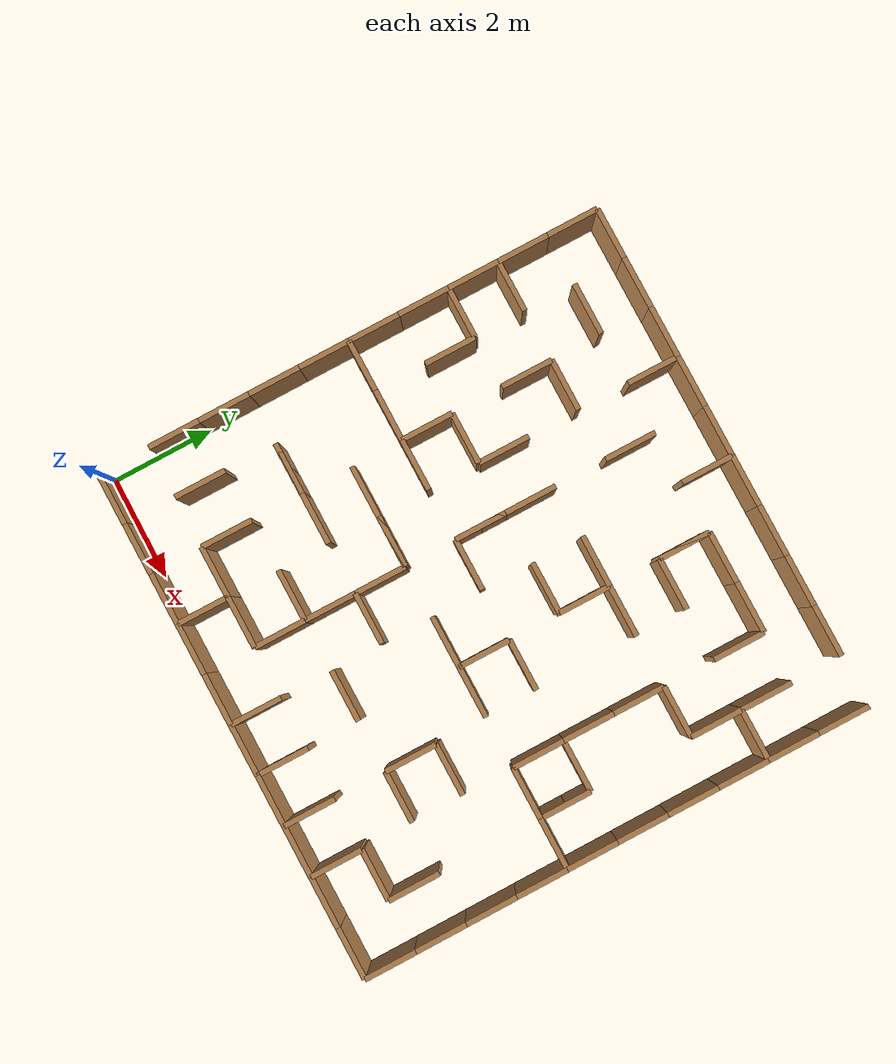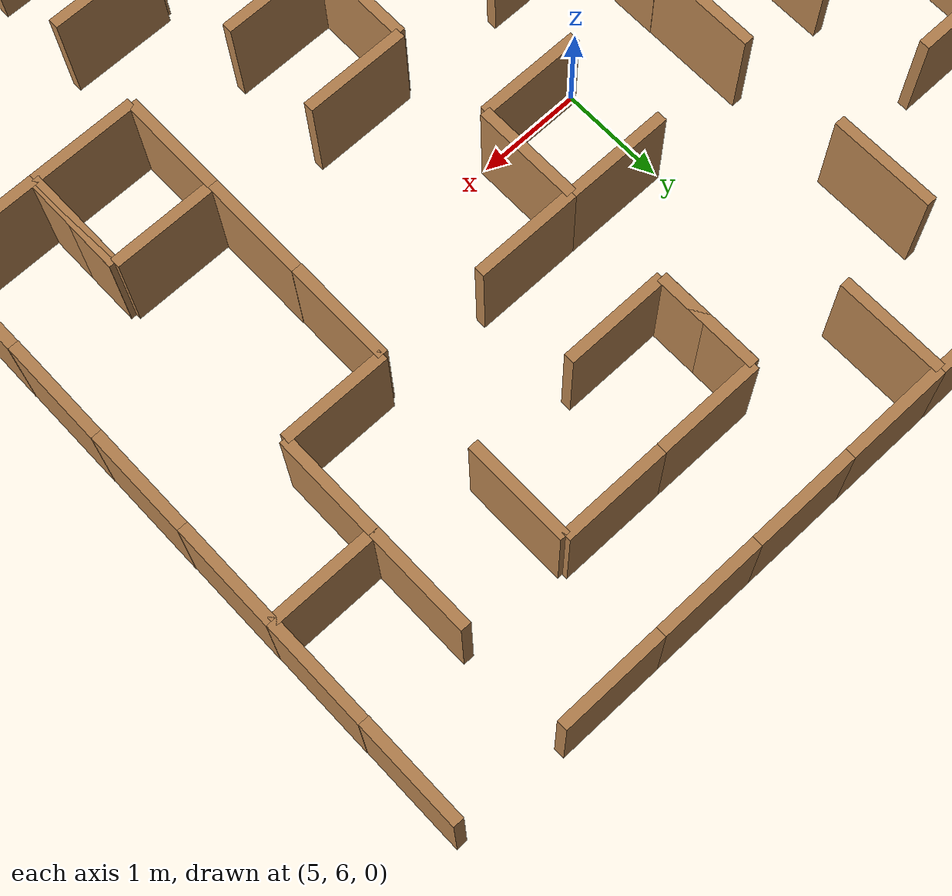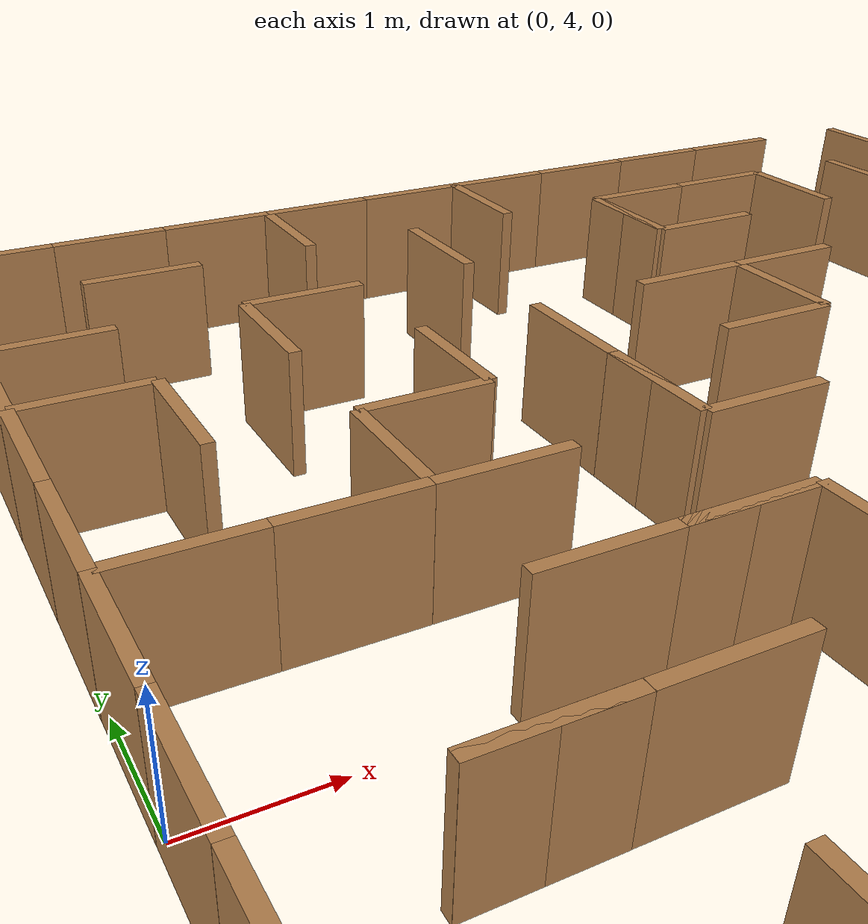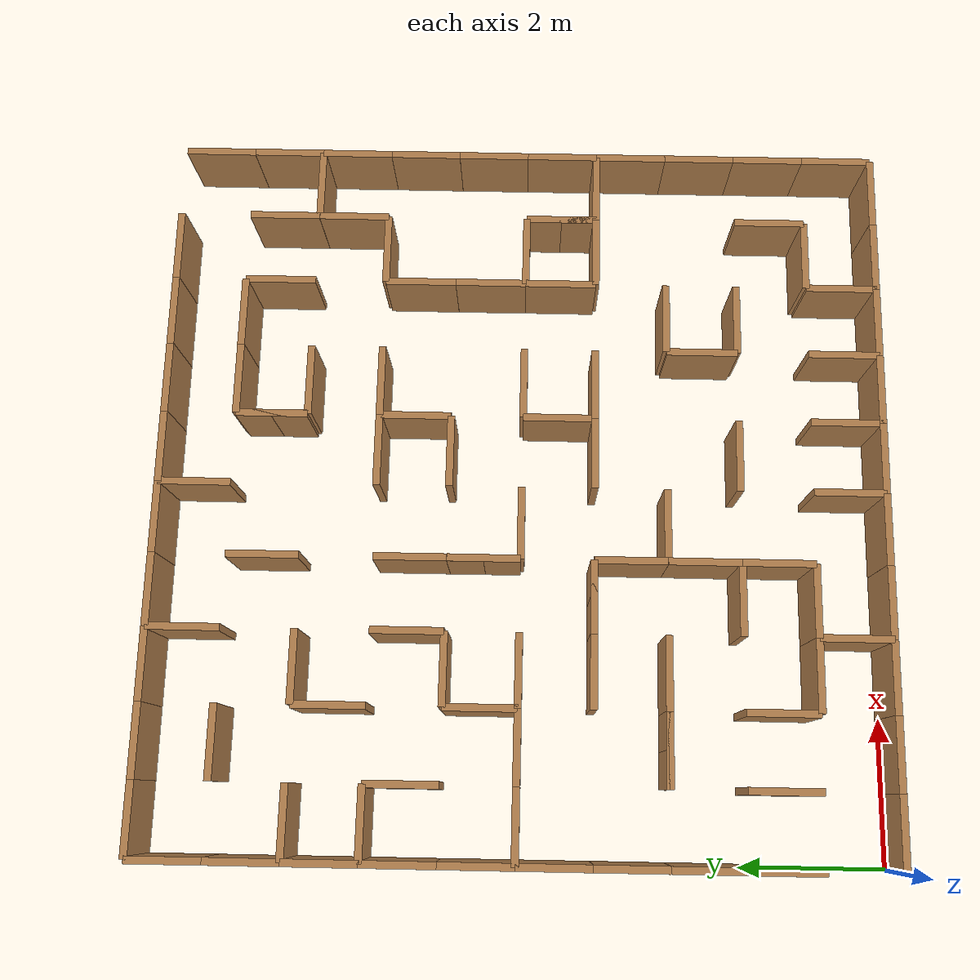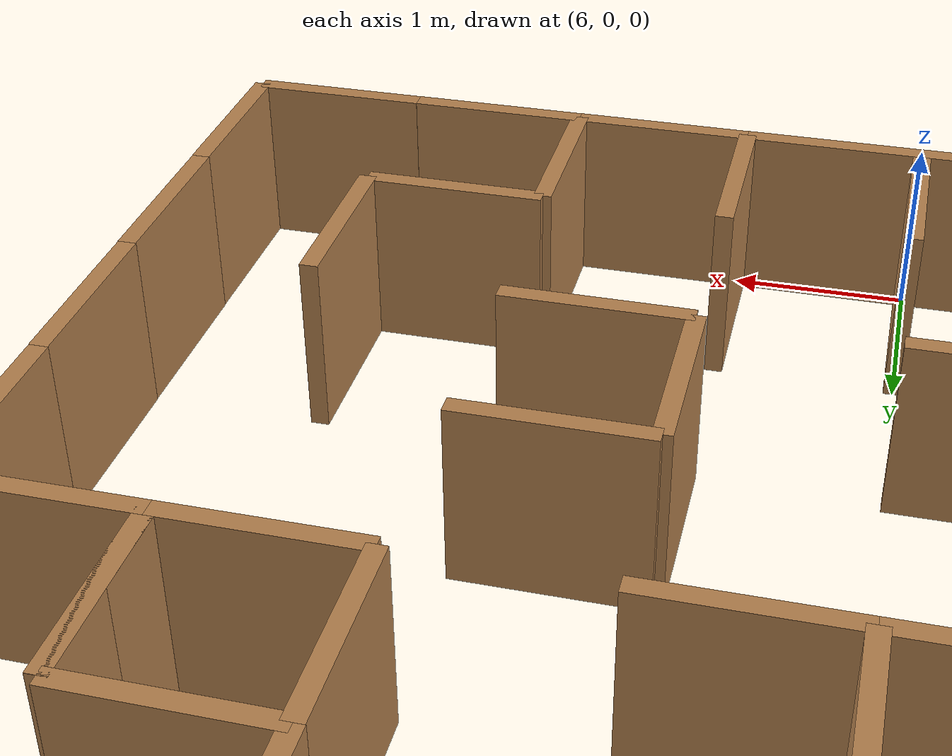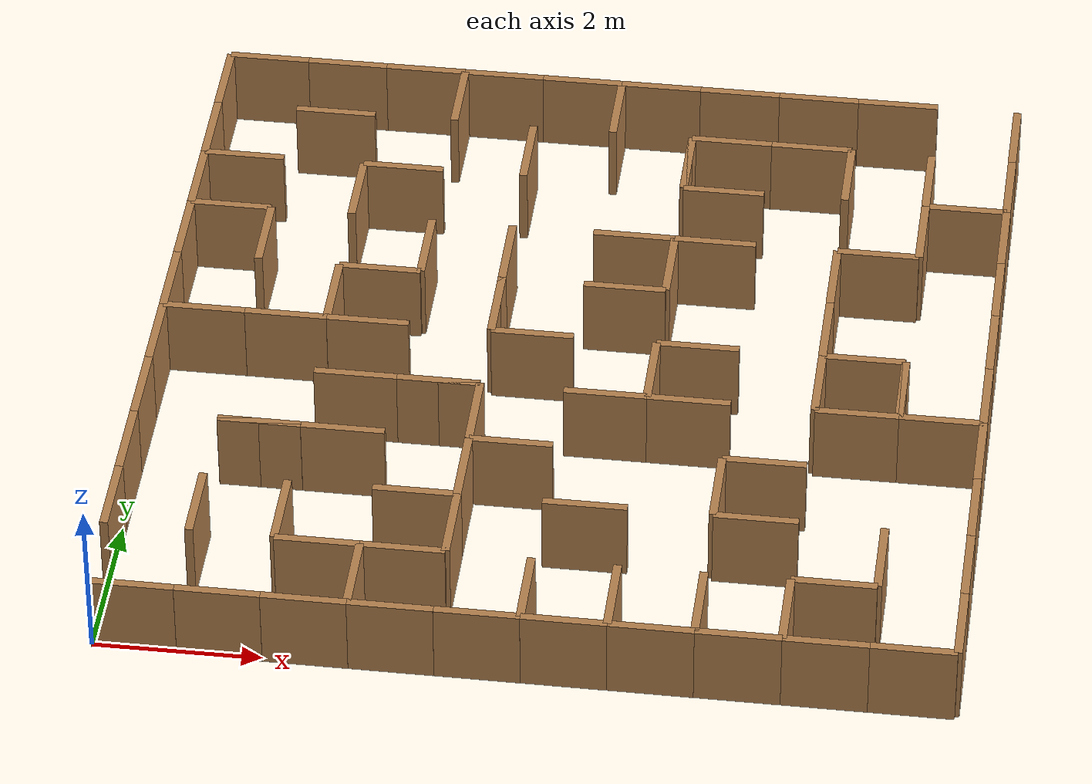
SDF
<?xml version='1.0'?>
<sdf version='1.6'>
<model name='slam_maze'>
<static>true</static>
<include>
<uri>../models/maze/slam_maze_wall</uri>
<pose>0.5 1.500000 0 0 0 1.570000</pose>
</include>
<include>
<uri>../models/maze/slam_maze_wall</uri>
<pose>0.5 2.500000 0 0 0 1.570000</pose>
</include>
<include>
<uri>../models/maze/slam_maze_wall</uri>
<pose>0.5 3.500000 0 0 0 1.570000</pose>
</include>
<include>
<uri>../models/maze/slam_maze_wall</uri>
<pose>0.5 4.500000 0 0 0 1.570000</pose>
</include>
<include>
<uri>../models/maze/slam_maze_wall</uri>
<pose>0.5 5.500000 0 0 0 1.570000</pose>
</include>
<include>
<uri>../models/maze/slam_maze_wall</uri>
<pose>0.5 6.500000 0 0 0 1.570000</pose>
</include>
<include>
<uri>../models/maze/slam_maze_wall</uri>
<pose>0.5 7.500000 0 0 0 1.570000</pose>
</include>
<include>
<uri>../models/maze/slam_maze_wall</uri>
<pose>0.5 8.500000 0 0 0 1.570000</pose>
</include>
<include>
<uri>../models/maze/slam_maze_wall</uri>
<pose>0.5 9.500000 0 0 0 1.570000</pose>
</include>
<include>
<uri>../models/maze/slam_maze_wall</uri>
<pose>9.5 0.500000 0 0 0 4.710000</pose>
</include>
<include>
<uri>../models/maze/slam_maze_wall</uri>
<pose>9.5 1.500000 0 0 0 4.710000</pose>
</include>
<include>
<uri>../models/maze/slam_maze_wall</uri>
<pose>9.5 2.500000 0 0 0 4.710000</pose>
</include>
<include>
<uri>../models/maze/slam_maze_wall</uri>
<pose>9.5 3.500000 0 0 0 4.710000</pose>
</include>
<include>
<uri>../models/maze/slam_maze_wall</uri>
<pose>9.5 4.500000 0 0 0 4.710000</pose>
</include>
<include>
<uri>../models/maze/slam_maze_wall</uri>
<pose>9.5 5.500000 0 0 0 4.710000</pose>
</include>
<include>
<uri>../models/maze/slam_maze_wall</uri>
<pose>9.5 6.500000 0 0 0 4.710000</pose>
</include>
<include>
<uri>../models/maze/slam_maze_wall</uri>
<pose>9.5 7.500000 0 0 0 4.710000</pose>
</include>
<include>
<uri>../models/maze/slam_maze_wall</uri>
<pose>9.5 8.500000 0 0 0 4.710000</pose>
</include>
<include>
<uri>../models/maze/slam_maze_wall</uri>
<pose>9.5 9.500000 0 0 0 4.710000</pose>
</include>
<include>
<uri>../models/maze/slam_maze_wall</uri>
<pose>0.500000 9.5 0 0 0 0.000000</pose>
</include>
<include>
<uri>../models/maze/slam_maze_wall</uri>
<pose>1.500000 9.5 0 0 0 0.000000</pose>
</include>
<include>
<uri>../models/maze/slam_maze_wall</uri>
<pose>2.500000 9.5 0 0 0 0.000000</pose>
</include>
<include>
<uri>../models/maze/slam_maze_wall</uri>
<pose>3.500000 9.5 0 0 0 0.000000</pose>
</include>
<include>
<uri>../models/maze/slam_maze_wall</uri>
<pose>4.500000 9.5 0 0 0 0.000000</pose>
</include>
<include>
<uri>../models/maze/slam_maze_wall</uri>
<pose>5.500000 9.5 0 0 0 0.000000</pose>
</include>
<include>
<uri>../models/maze/slam_maze_wall</uri>
<pose>6.500000 9.5 0 0 0 0.000000</pose>
</include>
<include>
<uri>../models/maze/slam_maze_wall</uri>
<pose>7.500000 9.5 0 0 0 0.000000</pose>
</include>
<include>
<uri>../models/maze/slam_maze_wall</uri>
<pose>8.500000 9.5 0 0 0 0.000000</pose>
</include>
<include>
<uri>../models/maze/slam_maze_wall</uri>
<pose>0.500000 0.5 0 0 0 3.140000</pose>
</include>
<include>
<uri>../models/maze/slam_maze_wall</uri>
<pose>1.500000 0.5 0 0 0 3.140000</pose>
</include>
<include>
<uri>../models/maze/slam_maze_wall</uri>
<pose>2.500000 0.5 0 0 0 3.140000</pose>
</include>
<include>
<uri>../models/maze/slam_maze_wall</uri>
<pose>3.500000 0.5 0 0 0 3.140000</pose>
</include>
<include>
<uri>../models/maze/slam_maze_wall</uri>
<pose>4.500000 0.5 0 0 0 3.140000</pose>
</include>
<include>
<uri>../models/maze/slam_maze_wall</uri>
<pose>5.500000 0.5 0 0 0 3.140000</pose>
</include>
<include>
<uri>../models/maze/slam_maze_wall</uri>
<pose>6.500000 0.5 0 0 0 3.140000</pose>
</include>
<include>
<uri>../models/maze/slam_maze_wall</uri>
<pose>7.500000 0.5 0 0 0 3.140000</pose>
</include>
<include>
<uri>../models/maze/slam_maze_wall</uri>
<pose>8.500000 0.5 0 0 0 3.140000</pose>
</include>
<include>
<uri>../models/maze/slam_maze_wall</uri>
<pose>9.500000 0.5 0 0 0 3.140000</pose>
</include>
<include>
<uri>../models/maze/slam_maze_wall</uri>
<pose>3.500000 9.500000 0 0 0 0.000000</pose>
</include>
<include>
<uri>../models/maze/slam_maze_wall</uri>
<pose>1.500000 2.500000 0 0 0 0.000000</pose>
</include>
<include>
<uri>../models/maze/slam_maze_wall</uri>
<pose>7.500000 2.500000 0 0 0 0.000000</pose>
</include>
<include>
<uri>../models/maze/slam_maze_wall</uri>
<pose>7.500000 4.500000 0 0 0 4.710000</pose>
</include>
<include>
<uri>../models/maze/slam_maze_wall</uri>
<pose>5.500000 8.500000 0 0 0 4.710000</pose>
</include>
<include>
<uri>../models/maze/slam_maze_wall</uri>
<pose>8.500000 5.500000 0 0 0 3.140000</pose>
</include>
<include>
<uri>../models/maze/slam_maze_wall</uri>
<pose>8.500000 1.500000 0 0 0 3.140000</pose>
</include>
<include>
<uri>../models/maze/slam_maze_wall</uri>
<pose>4.500000 0.500000 0 0 0 4.710000</pose>
</include>
<include>
<uri>../models/maze/slam_maze_wall</uri>
<pose>8.500000 3.500000 0 0 0 0.000000</pose>
</include>
<include>
<uri>../models/maze/slam_maze_wall</uri>
<pose>2.500000 2.500000 0 0 0 0.000000</pose>
</include>
<include>
<uri>../models/maze/slam_maze_wall</uri>
<pose>4.500000 6.500000 0 0 0 1.570000</pose>
</include>
<include>
<uri>../models/maze/slam_maze_wall</uri>
<pose>5.500000 7.500000 0 0 0 3.140000</pose>
</include>
<include>
<uri>../models/maze/slam_maze_wall</uri>
<pose>2.500000 9.500000 0 0 0 4.710000</pose>
</include>
<include>
<uri>../models/maze/slam_maze_wall</uri>
<pose>5.500000 4.500000 0 0 0 4.710000</pose>
</include>
<include>
<uri>../models/maze/slam_maze_wall</uri>
<pose>9.500000 1.500000 0 0 0 1.570000</pose>
</include>
<include>
<uri>../models/maze/slam_maze_wall</uri>
<pose>2.500000 6.500000 0 0 0 3.140000</pose>
</include>
<include>
<uri>../models/maze/slam_maze_wall</uri>
<pose>2.500000 0.500000 0 0 0 4.710000</pose>
</include>
<include>
<uri>../models/maze/slam_maze_wall</uri>
<pose>8.500000 8.500000 0 0 0 1.570000</pose>
</include>
<include>
<uri>../models/maze/slam_maze_wall</uri>
<pose>5.500000 5.500000 0 0 0 0.000000</pose>
</include>
<include>
<uri>../models/maze/slam_maze_wall</uri>
<pose>4.500000 9.500000 0 0 0 4.710000</pose>
</include>
<include>
<uri>../models/maze/slam_maze_wall</uri>
<pose>3.500000 4.500000 0 0 0 3.140000</pose>
</include>
<include>
<uri>../models/maze/slam_maze_wall</uri>
<pose>3.500000 1.500000 0 0 0 0.000000</pose>
</include>
<include>
<uri>../models/maze/slam_maze_wall</uri>
<pose>1.500000 9.500000 0 0 0 3.140000</pose>
</include>
<include>
<uri>../models/maze/slam_maze_wall</uri>
<pose>8.500000 7.500000 0 0 0 4.710000</pose>
</include>
<include>
<uri>../models/maze/slam_maze_wall</uri>
<pose>1.500000 3.500000 0 0 0 3.140000</pose>
</include>
<include>
<uri>../models/maze/slam_maze_wall</uri>
<pose>0.500000 5.500000 0 0 0 1.570000</pose>
</include>
<include>
<uri>../models/maze/slam_maze_wall</uri>
<pose>6.500000 7.500000 0 0 0 0.000000</pose>
</include>
<include>
<uri>../models/maze/slam_maze_wall</uri>
<pose>5.500000 0.500000 0 0 0 4.710000</pose>
</include>
<include>
<uri>../models/maze/slam_maze_wall</uri>
<pose>7.500000 0.500000 0 0 0 4.710000</pose>
</include>
<include>
<uri>../models/maze/slam_maze_wall</uri>
<pose>1.500000 7.500000 0 0 0 4.710000</pose>
</include>
<include>
<uri>../models/maze/slam_maze_wall</uri>
<pose>2.500000 4.500000 0 0 0 0.000000</pose>
</include>
<include>
<uri>../models/maze/slam_maze_wall</uri>
<pose>4.500000 8.500000 0 0 0 1.570000</pose>
</include>
<include>
<uri>../models/maze/slam_maze_wall</uri>
<pose>9.500000 7.500000 0 0 0 0.000000</pose>
</include>
<include>
<uri>../models/maze/slam_maze_wall</uri>
<pose>8.500000 9.500000 0 0 0 0.000000</pose>
</include>
<include>
<uri>../models/maze/slam_maze_wall</uri>
<pose>9.500000 0.500000 0 0 0 3.140000</pose>
</include>
<include>
<uri>../models/maze/slam_maze_wall</uri>
<pose>6.500000 2.500000 0 0 0 4.710000</pose>
</include>
<include>
<uri>../models/maze/slam_maze_wall</uri>
<pose>3.500000 0.500000 0 0 0 0.000000</pose>
</include>
<include>
<uri>../models/maze/slam_maze_wall</uri>
<pose>6.500000 4.500000 0 0 0 0.000000</pose>
</include>
<include>
<uri>../models/maze/slam_maze_wall</uri>
<pose>3.500000 3.500000 0 0 0 0.000000</pose>
</include>
<include>
<uri>../models/maze/slam_maze_wall</uri>
<pose>2.500000 3.500000 0 0 0 0.000000</pose>
</include>
<include>
<uri>../models/maze/slam_maze_wall</uri>
<pose>9.500000 3.500000 0 0 0 0.000000</pose>
</include>
<include>
<uri>../models/maze/slam_maze_wall</uri>
<pose>9.500000 8.500000 0 0 0 1.570000</pose>
</include>
<include>
<uri>../models/maze/slam_maze_wall</uri>
<pose>0.500000 3.500000 0 0 0 1.570000</pose>
</include>
<include>
<uri>../models/maze/slam_maze_wall</uri>
<pose>1.500000 0.500000 0 0 0 3.140000</pose>
</include>
<include>
<uri>../models/maze/slam_maze_wall</uri>
<pose>0.500000 4.500000 0 0 0 0.000000</pose>
</include>
<include>
<uri>../models/maze/slam_maze_wall</uri>
<pose>1.500000 5.500000 0 0 0 3.140000</pose>
</include>
<include>
<uri>../models/maze/slam_maze_wall</uri>
<pose>4.500000 2.500000 0 0 0 0.000000</pose>
</include>
<include>
<uri>../models/maze/slam_maze_wall</uri>
<pose>9.500000 4.500000 0 0 0 1.570000</pose>
</include>
<include>
<uri>../models/maze/slam_maze_wall</uri>
<pose>6.500000 0.500000 0 0 0 4.710000</pose>
</include>
<include>
<uri>../models/maze/slam_maze_wall</uri>
<pose>4.500000 1.500000 0 0 0 1.570000</pose>
</include>
<include>
<uri>../models/maze/slam_maze_wall</uri>
<pose>9.500000 5.500000 0 0 0 4.710000</pose>
</include>
<include>
<uri>../models/maze/slam_maze_wall</uri>
<pose>3.500000 2.500000 0 0 0 4.710000</pose>
</include>
<include>
<uri>../models/maze/slam_maze_wall</uri>
<pose>5.500000 3.500000 0 0 0 0.000000</pose>
</include>
<include>
<uri>../models/maze/slam_maze_wall</uri>
<pose>6.500000 6.500000 0 0 0 0.000000</pose>
</include>
<include>
<uri>../models/maze/slam_maze_wall</uri>
<pose>1.500000 1.500000 0 0 0 4.710000</pose>
</include>
<include>
<uri>../models/maze/slam_maze_wall</uri>
<pose>4.500000 4.500000 0 0 0 0.000000</pose>
</include>
<include>
<uri>../models/maze/slam_maze_wall</uri>
<pose>7.500000 9.500000 0 0 0 3.140000</pose>
</include>
<include>
<uri>../models/maze/slam_maze_wall</uri>
<pose>5.500000 1.500000 0 0 0 0.000000</pose>
</include>
<include>
<uri>../models/maze/slam_maze_wall</uri>
<pose>6.500000 9.500000 0 0 0 3.140000</pose>
</include>
<include>
<uri>../models/maze/slam_maze_wall</uri>
<pose>0.500000 8.500000 0 0 0 3.140000</pose>
</include>
<include>
<uri>../models/maze/slam_maze_wall</uri>
<pose>8.500000 6.500000 0 0 0 0.000000</pose>
</include>
<include>
<uri>../models/maze/slam_maze_wall</uri>
<pose>9.500000 2.500000 0 0 0 4.710000</pose>
</include>
<include>
<uri>../models/maze/slam_maze_wall</uri>
<pose>3.500000 6.500000 0 0 0 1.570000</pose>
</include>
<include>
<uri>../models/maze/slam_maze_wall</uri>
<pose>0.500000 7.500000 0 0 0 3.140000</pose>
</include>
<include>
<uri>../models/maze/slam_maze_wall</uri>
<pose>3.500000 5.500000 0 0 0 4.710000</pose>
</include>
<include>
<uri>../models/maze/slam_maze_wall</uri>
<pose>0.500000 1.500000 0 0 0 4.710000</pose>
</include>
<include>
<uri>../models/maze/slam_maze_wall</uri>
<pose>1.500000 6.500000 0 0 0 1.570000</pose>
</include>
<include>
<uri>../models/maze/slam_maze_wall</uri>
<pose>7.500000 6.500000 0 0 0 4.710000</pose>
</include>
<include>
<uri>../models/maze/slam_maze_wall</uri>
<pose>8.500000 4.500000 0 0 0 4.710000</pose>
</include>
<include>
<uri>../models/maze/slam_maze_wall</uri>
<pose>6.500000 3.500000 0 0 0 0.000000</pose>
</include>
<include>
<uri>../models/maze/slam_maze_wall</uri>
<pose>6.500000 8.500000 0 0 0 1.570000</pose>
</include>
<include>
<uri>../models/maze/slam_maze_wall</uri>
<pose>8.500000 0.500000 0 0 0 3.140000</pose>
</include>
<include>
<uri>../models/maze/slam_maze_wall</uri>
<pose>7.500000 5.500000 0 0 0 4.710000</pose>
</include>
<include>
<uri>../models/maze/slam_maze_wall</uri>
<pose>7.500000 1.500000 0 0 0 0.000000</pose>
</include>
<include>
<uri>../models/maze/slam_maze_wall</uri>
<pose>2.500000 5.500000 0 0 0 1.570000</pose>
</include>
<include>
<uri>../models/maze/slam_maze_wall</uri>
<pose>2.500000 8.500000 0 0 0 3.140000</pose>
</include>
<include>
<uri>../models/maze/slam_maze_wall</uri>
<pose>5.500000 6.500000 0 0 0 4.710000</pose>
</include>
<include>
<uri>../models/maze/slam_maze_wall</uri>
<pose>2.500000 1.500000 0 0 0 3.140000</pose>
</include>
<include>
<uri>../models/maze/slam_maze_wall</uri>
<pose>4.500000 5.500000 0 0 0 1.570000</pose>
</include>
<include>
<uri>../models/maze/slam_maze_wall</uri>
<pose>4.500000 3.500000 0 0 0 1.570000</pose>
</include>
</model>
</sdf>

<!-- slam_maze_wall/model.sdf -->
<sdf version="1.5">
  <model name="cube">
    <static>true</static>
    <link name="link">
      <pose>0 0.5 0.5 0 0 0</pose>
      <collision name="collision">
        <geometry>
          <box>
            <size>1 0.1 1</size>
          </box>
        </geometry>
      </collision>
      <visual name="visual">
        <geometry>
          <box>
            <size>1 0.1 1</size>
          </box>
        </geometry>
        <material>
          <diffuse>0.25 0.25 0.25 1</diffuse>
          <script>
            <uri>../../media/materials/scripts/my.material</uri>
            <name>wood</name>
          </script>
        </material>
      </visual>
    </link>
  </model>
</sdf>
